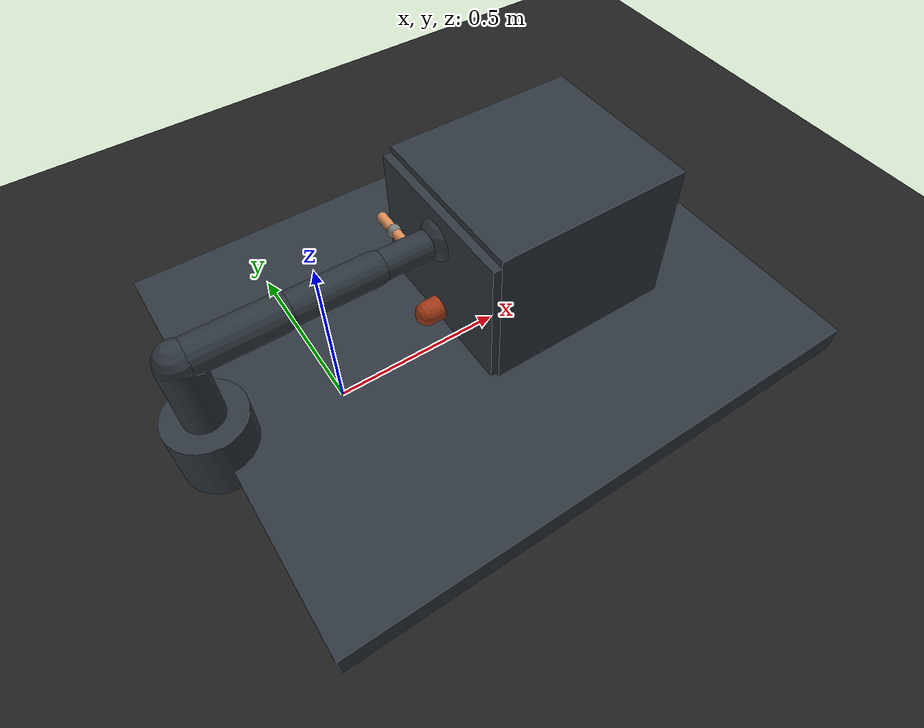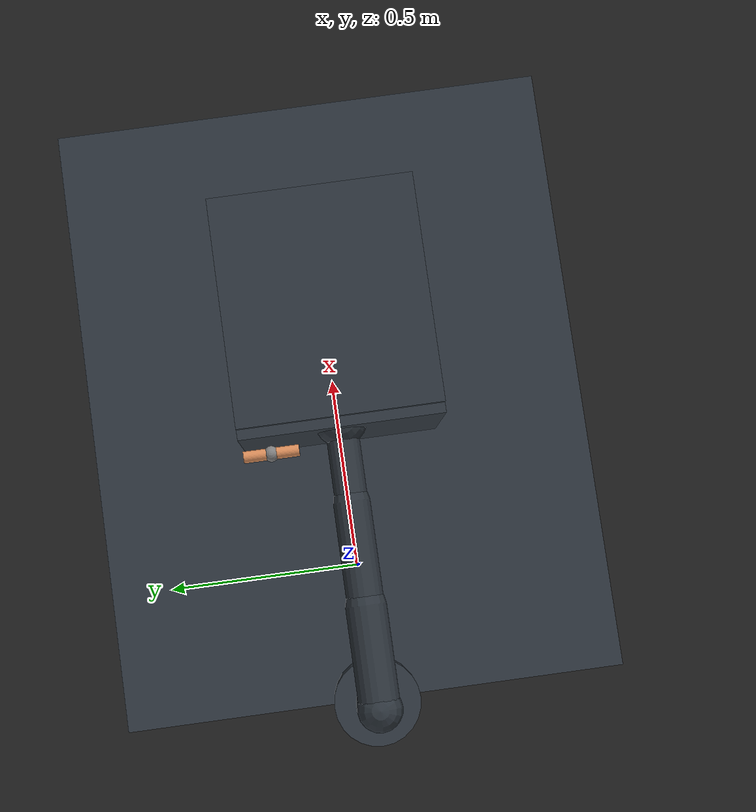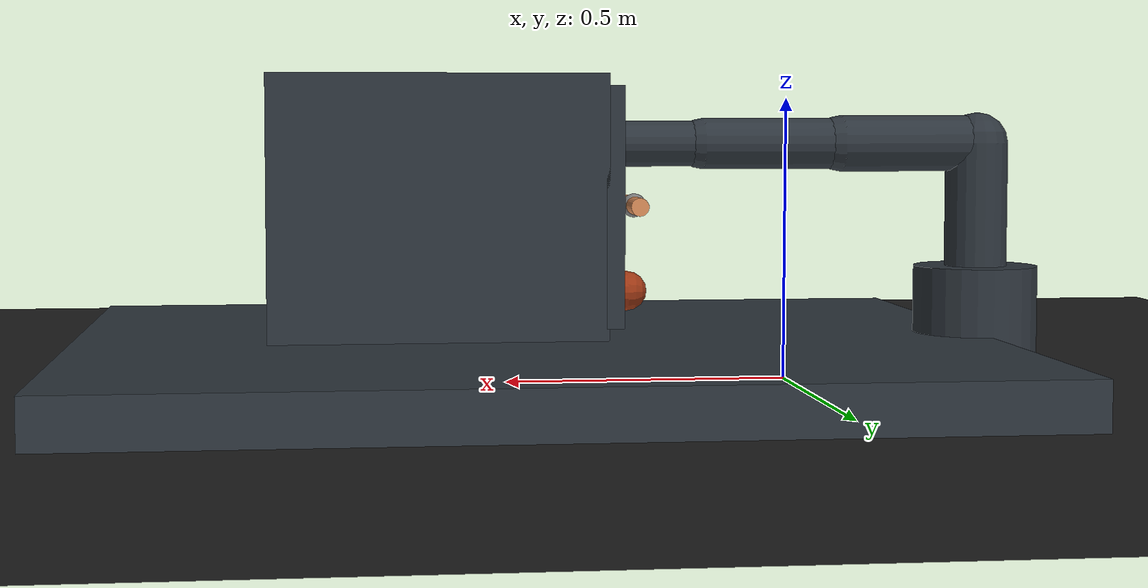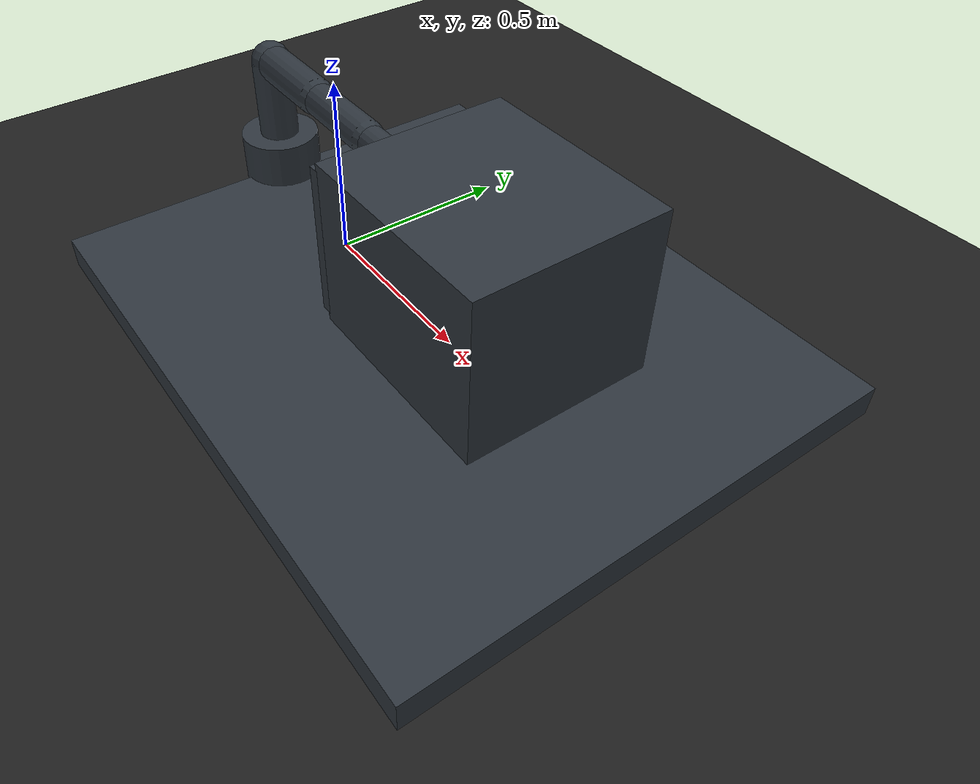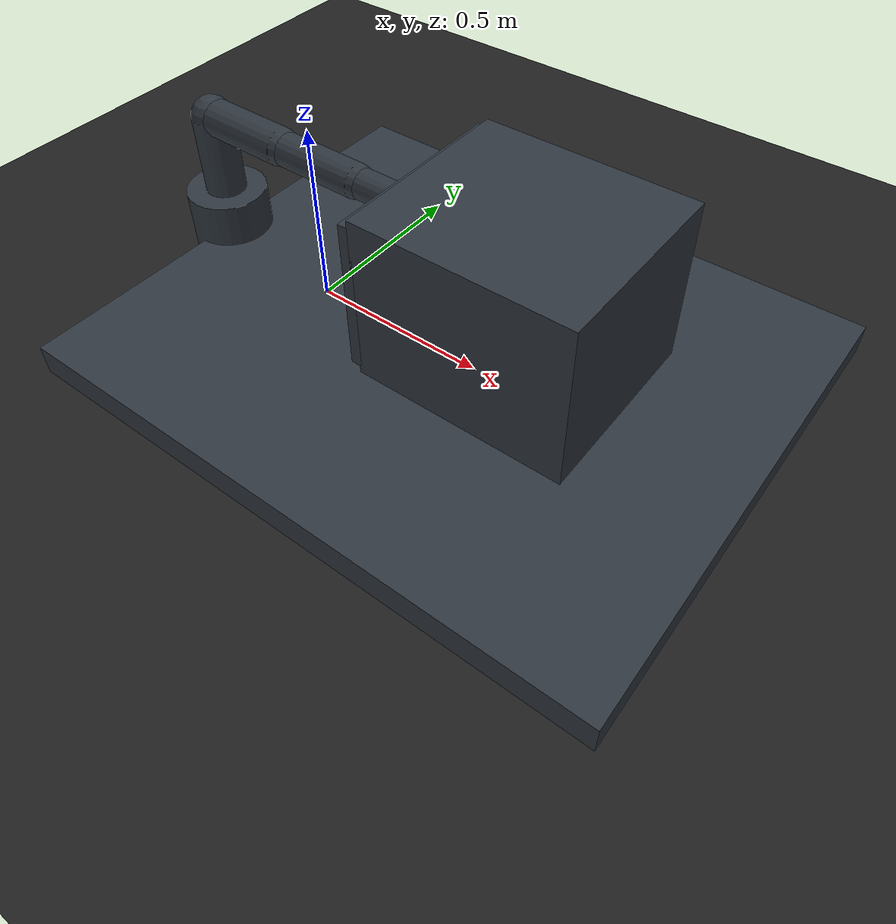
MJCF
<mujoco model="hand2_microwave">
  <compiler angle="radian" autolimits="true"/>
  <option timestep="0.002" gravity="0 0 -9.81" integrator="implicitfast"/>
  <visual><headlight diffuse="0.7 0.7 0.7" ambient="0.25 0.25 0.25"/></visual>
  <default>
    <joint damping="2" armature="0.02" limited="true"/>
    <geom friction="1 0.01 0.001" condim="4"/>
    <position kp="35" forcerange="-80 80"/>
  </default>
  <asset>
    <material name="metal" rgba="0.18 0.21 0.24 1"/>
    <material name="food" rgba="0.62 0.22 0.08 1"/>
    <material name="skin" rgba="0.85 0.55 0.35 1"/>
  </asset>
  <worldbody>
    <light pos="0 0 2" dir="0 0 -1" directional="true"/>
    <geom name="floor" type="plane" size="3 3 .1" rgba="0.12 0.12 0.12 1"/>
    <geom name="table" type="box" pos="0.45 0 0.0" size="0.8 0.65 0.08" material="metal"/>
    <body name="arm_base" pos="-0.35 0 0.1">
      <geom type="cylinder" size=".11 .1" material="metal"/>
      <body pos="0 0 .1"><joint name="arm_1" type="hinge" axis="0 0 1" range="-2.9 2.9"/><geom type="capsule" fromto="0 0 0 .0 0 .22" size=".055" material="metal"/>
        <body pos="0 0 .22"><joint name="arm_2" type="hinge" axis="0 1 0" range="-2.0 2.0"/><geom type="capsule" fromto="0 0 0 .25 0 0" size=".05" material="metal"/>
          <body pos=".25 0 0"><joint name="arm_3" type="hinge" axis="1 0 0" range="-2.9 2.9"/><geom type="capsule" fromto="0 0 0 .25 0 0" size=".045" material="metal"/>
            <body pos=".25 0 0"><joint name="arm_4" type="hinge" axis="0 1 0" range="-2.7 .2"/><geom type="capsule" fromto="0 0 0 .20 0 0" size=".04" material="metal"/>
              <body pos=".20 0 0"><joint name="arm_5" type="hinge" axis="1 0 0" range="-2.9 2.9"/><geom type="sphere" size=".065" material="metal"/>
                <body><joint name="arm_6" type="hinge" axis="0 1 0" range="-2.0 2.0"/><geom type="capsule" fromto="0 0 0 .12 0 0" size=".035" material="metal"/>
                  <body pos=".12 0 0"><joint name="arm_7" type="hinge" axis="1 0 0" range="-2.9 2.9"/>
                    <body name="palm" pos=".08 0 0"><geom type="box" size=".07 .10 .035" material="skin"/><site name="palm_site" pos=".09 0 0" size=".01"/>
                      <body pos=".03 -.075 .015"><joint name="thumb_mcp" type="hinge" axis="0 1 0" range="0 1.3"/><geom type="capsule" fromto="0 0 0 .07 0 -.02" size=".018" material="skin"/><body pos=".07 0 -.02"><joint name="thumb_pip" type="hinge" axis="0 1 0" range="0 1.5"/><geom type="capsule" fromto="0 0 0 .06 0 0" size=".015" material="skin"/><site name="tip_thumb" pos=".06 0 0" size=".014"/></body></body>
                      <body pos=".06 -.05 .025"><joint name="index_mcp" type="hinge" axis="0 1 0" range="0 1.5"/><geom type="capsule" fromto="0 0 0 .09 0 0" size=".015" material="skin"/><body pos=".09 0 0"><joint name="index_pip" type="hinge" axis="0 1 0" range="0 1.6"/><geom type="capsule" fromto="0 0 0 .06 0 0" size=".013" material="skin"/><site name="tip_index" pos=".06 0 0" size=".012"/></body></body>
                      <body pos=".07 0 .03"><joint name="middle_mcp" type="hinge" axis="0 1 0" range="0 1.5"/><geom type="capsule" fromto="0 0 0 .10 0 0" size=".015" material="skin"/><body pos=".10 0 0"><joint name="middle_pip" type="hinge" axis="0 1 0" range="0 1.6"/><geom type="capsule" fromto="0 0 0 .065 0 0" size=".013" material="skin"/><site name="tip_middle" pos=".065 0 0" size=".012"/></body></body>
                      <body pos=".06 .05 .025"><joint name="ring_mcp" type="hinge" axis="0 1 0" range="0 1.5"/><geom type="capsule" fromto="0 0 0 .09 0 0" size=".014" material="skin"/><body pos=".09 0 0"><joint name="ring_pip" type="hinge" axis="0 1 0" range="0 1.6"/><geom type="capsule" fromto="0 0 0 .06 0 0" size=".012" material="skin"/><site name="tip_ring" pos=".06 0 0" size=".012"/></body></body>
                      <body pos=".045 .085 .015"><joint name="little_mcp" type="hinge" axis="0 1 0" range="0 1.5"/><geom type="capsule" fromto="0 0 0 .075 0 0" size=".013" material="skin"/><body pos=".075 0 0"><joint name="little_pip" type="hinge" axis="0 1 0" range="0 1.6"/><geom type="capsule" fromto="0 0 0 .05 0 0" size=".011" material="skin"/><site name="tip_little" pos=".05 0 0" size=".011"/></body></body>
                    </body>
                  </body>
                </body>
              </body>
            </body>
          </body>
        </body>
      </body>
    </body>
    <body name="microwave" pos=".63 0 .32"><geom type="box" size=".28 .25 .22" material="metal"/>
      <geom type="box" pos="-.01 0 0" size=".27 .24 .18" rgba=".04 .04 .04 1"/>
      <site name="cavity_target" pos="0 0 .02" size=".03" rgba="0 1 0 .4"/>
      <body name="door" pos="-.29 -.25 0"><joint name="door_hinge" type="hinge" axis="0 0 1" range="0 1.35" damping="3"/>
        <geom type="box" pos="0 .25 0" size=".015 .25 .2" material="metal"/><geom type="cylinder" pos="-.04 .43 0" size=".015 .07" euler="1.5708 0 0" material="skin"/><site name="handle_site" pos="-.04 .43 0" size=".02"/>
      </body>
    </body>
    <body name="drumstick" pos=".34 0 .16"><freejoint name="drumstick_free"/><geom type="capsule" fromto="-.055 0 0 .055 0 0" size=".035" mass=".14" material="food"/><geom type="sphere" pos=".08 0 0" size=".025" rgba=".9 .8 .55 1"/></body>
  </worldbody>
  <actuator>
    <position name="arm_1" joint="arm_1" ctrlrange="-2.9 2.9"/><position name="arm_2" joint="arm_2" ctrlrange="-2 2"/><position name="arm_3" joint="arm_3" ctrlrange="-2.9 2.9"/><position name="arm_4" joint="arm_4" ctrlrange="-2.7 .2"/><position name="arm_5" joint="arm_5" ctrlrange="-2.9 2.9"/><position name="arm_6" joint="arm_6" ctrlrange="-2 2"/><position name="arm_7" joint="arm_7" ctrlrange="-2.9 2.9"/>
    <position name="thumb_mcp" joint="thumb_mcp" ctrlrange="0 1.3"/><position name="thumb_pip" joint="thumb_pip" ctrlrange="0 1.5"/><position name="index_mcp" joint="index_mcp" ctrlrange="0 1.5"/><position name="index_pip" joint="index_pip" ctrlrange="0 1.6"/><position name="middle_mcp" joint="middle_mcp" ctrlrange="0 1.5"/><position name="middle_pip" joint="middle_pip" ctrlrange="0 1.6"/><position name="ring_mcp" joint="ring_mcp" ctrlrange="0 1.5"/><position name="ring_pip" joint="ring_pip" ctrlrange="0 1.6"/><position name="little_mcp" joint="little_mcp" ctrlrange="0 1.5"/><position name="little_pip" joint="little_pip" ctrlrange="0 1.6"/>
  </actuator>
  <sensor>
    <touch name="tactile_thumb" site="tip_thumb"/><touch name="tactile_index" site="tip_index"/><touch name="tactile_middle" site="tip_middle"/><touch name="tactile_ring" site="tip_ring"/><touch name="tactile_little" site="tip_little"/>
  </sensor>
</mujoco>
